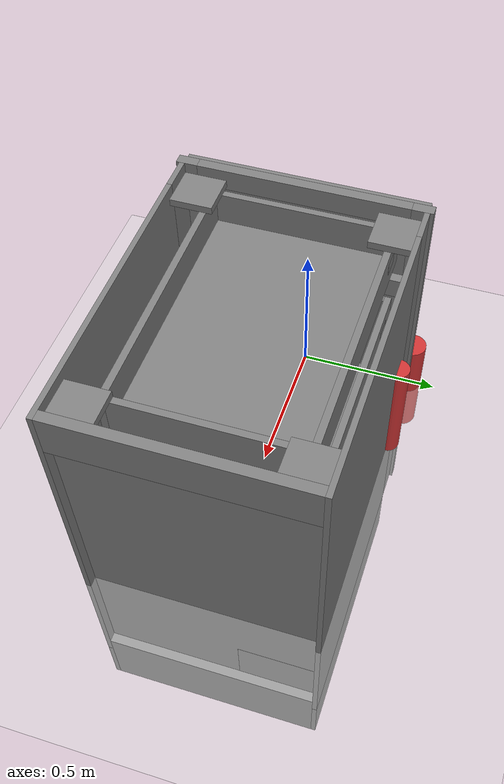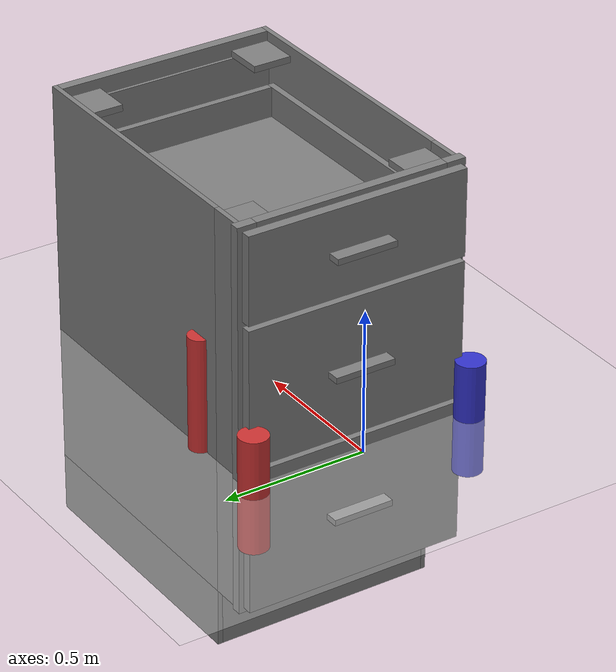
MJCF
<mujoco>
    <compiler angle="radian"/>
    <option timestep="0.005" gravity="0 0 -9.81"/>

    <worldbody>
        <light pos="0 0 3" dir="0 0 -1" directional="true" castshadow="true"/>
        <geom type="plane" size="2 2 0.1" rgba="0.9 0.9 0.9 1"/>

        <body name="target_cabinet" pos="0.6 0 0.1">
            <geom size="0.03413 0.682575 0.017065" pos="-0.51681 -0.37247 0.09596" quat="0.5 0.5 -0.5 -0.5" type="box" />
    <geom size="0.03413 0.682575 0.017065" pos="-0.51681 0.37836 0.09596" quat="0.5 0.5 -0.5 -0.5" type="box" />
    <geom size="0.381105 0.068255 0.017065" pos="0.54119 0.00294 0.71028" quat="0.5 0.5 -0.5 -0.5" type="box" />
    <geom size="0.34129 0.03413 0.017065" pos="-0.51681 0.00294 -0.55249" quat="0.5 0.5 -0.5 -0.5" type="box" />
    <geom size="0.34129 0.03413 0.017065" pos="-0.51681 0.00294 -0.04625" quat="0.5 0.5 -0.5 -0.5" type="box" />
    <geom size="0.34129 0.03413 0.017065" pos="-0.51681 0.00294 0.44862" quat="0.5 0.5 -0.5 -0.5" type="box" />
    <geom size="0.34129 0.03413 0.017065" pos="-0.51681 0.00294 0.74441" quat="0.5 0.5 -0.5 -0.5" type="box" />
    <geom size="0.06826 0.011375 0.06826" pos="-0.43148 -0.3099 0.73303" quat="0.5 0.5 -0.5 -0.5" type="box" />
    <geom size="0.068255 0.011375 0.06826" pos="-0.43148 0.31579 0.73303" quat="0.5 0.5 -0.5 -0.5" type="box" />
    <geom size="0.06826 0.011375 0.068255" pos="0.45587 -0.3099 0.73303" quat="0.5 0.5 -0.5 -0.5" type="box" />
    <geom size="0.068255 0.011375 0.068255" pos="0.45587 0.31579 0.73303" quat="0.5 0.5 -0.5 -0.5" type="box" />
    <geom size="0.00853 0.682575 0.47496" pos="0.08329 0.39258 0.09596" quat="0.5 0.5 -0.5 -0.5" type="box" />
    <geom size="0.00853 0.682575 0.054035" pos="-0.4457 0.39258 0.09596" quat="0.5 0.5 -0.5 -0.5" type="box" />
    <geom size="0.00853 0.682575 0.054035" pos="-0.4457 -0.38669 0.09596" quat="0.5 0.5 -0.5 -0.5" type="box" />
    <geom size="0.00853 0.682575 0.47496" pos="0.08329 -0.38669 0.09596" quat="0.5 0.5 -0.5 -0.5" type="box" />
    <geom size="0.381105 0.63707 0.00569" pos="0.51844 0.00294 0.08458" quat="0.5 0.5 -0.5 -0.5" type="box" />
    <geom size="0.381105 0.011375 0.506245" pos="0.0065 0.00294 -0.54111" quat="0.5 0.5 -0.5 -0.5" type="box" />
    <geom size="0.136515 0.09215 0.0005" pos="0.52412 0.24185 -0.4319" quat="0.5 0.5 -0.5 -0.5" type="box" />
    <geom size="0.0005 0.02275 0.03371" pos="-0.4319 0.31295 -0.19129" quat="0.5 0.5 -0.5 -0.5" type="box" />
    <geom size="0.0005 0.022755 0.03371" pos="-0.4319 0.31295 0.31495" quat="0.5 0.5 -0.5 -0.5" type="box" />
    <geom size="0.0005 0.022755 0.03371" pos="-0.4319 0.31295 0.61642" quat="0.5 0.5 -0.5 -0.5" type="box" />
    <geom size="0.00853 0.102385 0.47496" pos="0.08329 -0.38669 -0.68901" quat="0.5 0.5 -0.5 -0.5" type="box" />
    <geom size="0.381105 0.13367 0.017065" pos="0.54119 0.00294 -0.65772" quat="0.5 0.5 -0.5 -0.5" type="box" />
    <geom size="0.00853 0.102385 0.47496" pos="0.08329 0.39258 -0.68901" quat="0.5 0.5 -0.5 -0.5" type="box" />
    <geom size="0.381105 0.11945 0.00853" pos="-0.38313 0.00294 -0.67194" quat="0.5 0.5 -0.5 -0.5" type="box" />
    <body name="link_0" quat="0.5 0.5 -0.5 -0.5">
      <inertial pos="0 0 0" mass="1" diaginertia="0.01 0.01 0.01" />
      <joint name="joint_0" pos="0 0 0" axis="0 0 1" type="slide" range="0 0.8" />
      <geom size="0.39248 0.254545 0.017065" pos="-0.00294 -0.31501 0.55093" type="box" />
      <geom size="0.28725 0.18202 0.011375" pos="-0.00294 -0.31643 0.52249" type="box" />
      <geom size="0.011375 0.18202 0.45505" pos="0.29568 -0.31643 0.07882" type="box" />
      <geom size="0.011375 0.18202 0.45505" pos="-0.30157 -0.31643 0.07882" type="box" />
      <geom size="0.28725 0.18202 0.011375" pos="-0.00294 -0.31643 -0.36486" type="box" />
      <geom size="0.28725 0.0005 0.4323" pos="-0.00294 -0.46717 0.07882" type="box" />
      <geom size="0.28725 0.0005 0.4323" pos="-0.00294 -0.4757 0.07882" type="box" />
      <geom size="0.10708 0.010525 0.022935" pos="-0.00294 -0.31501 0.59093" type="box" />
    </body>
    <body name="link_1" quat="0.5 0.5 -0.5 -0.5">
      <inertial pos="0 0 0" mass="1" diaginertia="0.01 0.01 0.01" />
      <joint name="joint_1" pos="0 0 0" axis="0 0 1" type="slide" range="0 0.8" />
      <geom size="0.39248 0.241745 0.017065" pos="-0.00294 0.19834 0.55093" type="box" />
      <geom size="0.28725 0.18202 0.011375" pos="-0.00294 0.18981 0.52249" type="box" />
      <geom size="0.011375 0.18202 0.45505" pos="0.29568 0.18981 0.07882" type="box" />
      <geom size="0.011375 0.18202 0.45505" pos="-0.30157 0.18981 0.07882" type="box" />
      <geom size="0.28725 0.18202 0.011375" pos="-0.00294 0.18981 -0.36486" type="box" />
      <geom size="0.28725 0.0005 0.4323" pos="-0.00294 0.03054 0.07882" type="box" />
      <geom size="0.28725 0.0005 0.4323" pos="-0.00294 0.03908 0.07882" type="box" />
      <geom size="0.10708 0.010525 0.022935" pos="-0.00294 0.19834 0.59093" type="box" />
    </body>
    <body name="link_2" quat="0.5 0.5 -0.5 -0.5">
      <inertial pos="0 0 0" mass="1" diaginertia="0.01 0.01 0.01" />
      <joint name="joint_2" pos="0 0 0" axis="0 0 1" type="slide" range="0 0.8" />
      <geom size="0.28725 0.06826 0.011375" pos="-0.00294 0.60505 0.52249" type="box" />
      <geom size="0.39248 0.15216 0.017065" pos="-0.00294 0.60931 0.55093" type="box" />
      <geom size="0.011375 0.06826 0.45505" pos="0.29568 0.60505 0.07882" type="box" />
      <geom size="0.011375 0.06826 0.45505" pos="-0.30157 0.60505 0.07882" type="box" />
      <geom size="0.28725 0.06826 0.011375" pos="-0.00294 0.60505 -0.36486" type="box" />
      <geom size="0.28725 0.0005 0.4323" pos="-0.00294 0.56807 0.07882" type="box" />
      <geom size="0.28725 0.0005 0.4323" pos="-0.00294 0.55954 0.07882" type="box" />
      <geom size="0.10708 0.010525 0.022935" pos="-0.00294 0.60931 0.59093" type="box" />
    </body>

        </body>

        <body name="left_arm" pos="0 0.4 0">
            <geom type="cylinder" size="0.05 0.2" rgba="0.8 0.2 0.2 1"/>
            <joint name="left_j1" type="hinge" axis="0 0 1"/>
            <body pos="0.3 0 0.2">
                <geom type="cylinder" size="0.04 0.2" rgba="0.8 0.2 0.2 1"/>
                <joint name="left_j2" type="hinge" axis="0 1 0"/>
            </body>
        </body>

        <body name="right_arm" pos="0 -0.4 0">
            <geom type="cylinder" size="0.05 0.2" rgba="0.2 0.2 0.8 1"/>
            <joint name="right_j1" type="hinge" axis="0 0 1"/>
            <body name="right_wrist" pos="0.3 0 0.2">
                <geom type="cylinder" size="0.04 0.2" rgba="0.2 0.2 0.8 1"/>
                <joint name="right_j2" type="hinge" axis="0 1 0"/>
                <camera name="hand_camera" pos="0.1 0 0" fovy="60" zaxis="1 0 0"/>
            </body>
        </body>
    </worldbody>
</mujoco>
